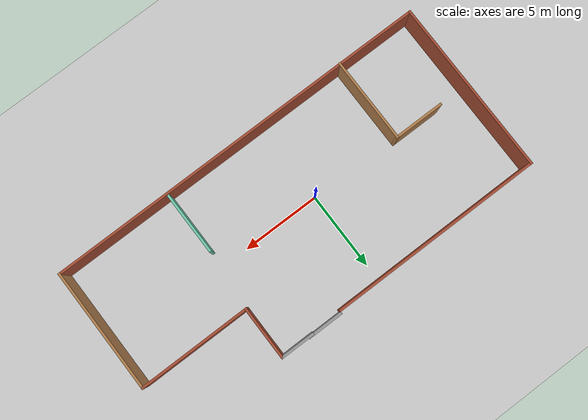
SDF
<sdf version="1.7">
 <world name="default">
  <light name="sun" type="directional">
   <pose>0 0 10 0 -0 0</pose>
   <diffuse>0.8 0.8 0.8 1</diffuse>
   <specular>0.2 0.2 0.2 1</specular>
   <attenuation>
    <range>1000</range>
    <constant>0.9</constant>
    <linear>0.01</linear>
    <quadratic>0.001</quadratic>
   </attenuation>
   <direction>-0.5 0.1 -0.9</direction>
   <spot><inner_angle>0</inner_angle><outer_angle>0</outer_angle><falloff>0</falloff></spot>
  </light>
  <model name="ground_plane">
   <static>1</static>
   <link name="link">
    <collision name="collision">
     <geometry><plane><normal>0 0 1</normal><size>100 100</size></plane></geometry>
     <surface>
      <contact><collide_bitmask>65535</collide_bitmask></contact>
      <friction><ode><mu>100</mu><mu2>50</mu2></ode></friction>
     </surface>
    </collision>
    <visual name="visual">
     <cast_shadows>0</cast_shadows>
     <geometry><plane><normal>0 0 1</normal><size>100 100</size></plane></geometry>
     <material>
      <script><uri>file://media/materials/scripts/gazebo.material</uri><name>Gazebo/Grey</name></script>
     </material>
    </visual>
   </link>
  </model>
  <gravity>0 0 -9.8</gravity>
  <magnetic_field>6e-06 2.3e-05 -4.2e-05</magnetic_field>
  <atmosphere type="adiabatic"/>
  <physics type="ode">
   <max_step_size>0.001</max_step_size>
   <real_time_factor>1</real_time_factor>
   <real_time_update_rate>1000</real_time_update_rate>
  </physics>
  <scene><ambient>0.4 0.4 0.4 1</ambient><background>0.7 0.7 0.7 1</background><shadows>1</shadows></scene>
  <spherical_coordinates>
   <surface_model>EARTH_WGS84</surface_model>
   <latitude_deg>0</latitude_deg>
   <longitude_deg>0</longitude_deg>
   <elevation>0</elevation>
   <heading_deg>0</heading_deg>
  </spherical_coordinates>
  <model name="rmp025">
   <pose>1.70334 0.548408 0 0 -0 0</pose>
   <link name="Door_0">
    <collision name="Door_0_Collision">
     <geometry><box><size>2.3 0.17 2</size></box></geometry>
     <pose>0 0 1 0 -0 0</pose>
    </collision>
    <visual name="Door_0_Visual">
     <pose>0 0 1 0 -0 0</pose>
     <geometry><box><size>2.3 0.17 2</size></box></geometry>
     <material>
      <script><uri>file://media/materials/scripts/gazebo.material</uri><name>Gazebo/Grey</name></script>
     </material>
    </visual>
    <pose>2.35858 5.66772 0 0 -0 0</pose>
   </link>
   <link name="Wall_10">
    <collision name="Wall_10_Collision">
     <geometry><box><size>3.5 0.15 2.5</size></box></geometry>
     <pose>0 0 1.25 0 -0 0</pose>
    </collision>
    <visual name="Wall_10_Visual">
     <pose>0 0 1.25 0 -0 0</pose>
     <geometry><box><size>3.5 0.15 2.5</size></box></geometry>
     <material>
      <script><uri>file://media/materials/scripts/gazebo.material</uri><name>Gazebo/Bricks</name></script>
      <ambient>1 1 1 1</ambient>
     </material>
     <meta><layer>0</layer></meta>
    </visual>
    <pose>5.325 3.93718 0 0 -0 1.5708</pose>
   </link>
   <link name="Wall_11">
    <collision name="Wall_11_Collision">
     <geometry><box><size>2.25 0.15 2.5</size></box></geometry>
     <pose>0 0 1.25 0 -0 0</pose>
    </collision>
    <visual name="Wall_11_Visual">
     <pose>0 0 1.25 0 -0 0</pose>
     <geometry><box><size>2.25 0.15 2.5</size></box></geometry>
     <material>
      <script><uri>file://media/materials/scripts/gazebo.material</uri><name>Gazebo/Grey</name></script>
      <ambient>1 1 1 1</ambient>
     </material>
     <meta><layer>0</layer></meta>
    </visual>
    <pose>4.275 5.61218 0 0 -0 3.14159</pose>
   </link>
   <link name="Wall_13">
    <collision name="Wall_13_Collision">
     <geometry><box><size>4 0.15 2.5</size></box></geometry>
     <pose>0 0 1.25 0 -0 0</pose>
    </collision>
    <visual name="Wall_13_Visual">
     <pose>0 0 1.25 0 -0 0</pose>
     <geometry><box><size>4 0.15 2.5</size></box></geometry>
     <material>
      <script><uri>file://media/materials/scripts/gazebo.material</uri><name>Gazebo/Grey</name></script>
      <ambient>0.435294 0.796078 0.67451 1</ambient>
     </material>
     <meta><layer>0</layer></meta>
    </visual>
    <pose>4.97757 -3.48728 0 0 -0 1.5708</pose>
   </link>
   <link name="Wall_15">
    <collision name="Wall_15_Collision">
     <geometry><box><size>5.5 0.15 2.5</size></box></geometry>
     <pose>0 0 1.25 0 -0 0</pose>
    </collision>
    <visual name="Wall_15_Visual">
     <pose>0 0 1.25 0 -0 0</pose>
     <geometry><box><size>5.5 0.15 2.5</size></box></geometry>
     <material>
      <script><uri>file://media/materials/scripts/gazebo.material</uri><name>Gazebo/Wood</name></script>
      <ambient>1 1 1 1</ambient>
     </material>
     <meta><layer>0</layer></meta>
    </visual>
    <pose>-7.34218 -2.93718 0 0 -0 1.5708</pose>
   </link>
   <link name="Wall_16">
    <collision name="Wall_16_Collision">
     <geometry><box><size>3.25 0.15 2.5</size></box></geometry>
     <pose>0 0 1.25 0 -0 0</pose>
    </collision>
    <visual name="Wall_16_Visual">
     <pose>0 0 1.25 0 -0 0</pose>
     <geometry><box><size>3.25 0.15 2.5</size></box></geometry>
     <material>
      <script><uri>file://media/materials/scripts/gazebo.material</uri><name>Gazebo/Wood</name></script>
      <ambient>1 1 1 1</ambient>
     </material>
     <meta><layer>0</layer></meta>
    </visual>
    <pose>-8.89218 -0.26218 0 0 -0 3.14159</pose>
   </link>
   <link name="Wall_5">
    <collision name="Wall_5_Collision">
     <geometry><box><size>13.75 0.15 2.5</size></box></geometry>
     <pose>0 0 1.25 0 -0 0</pose>
    </collision>
    <visual name="Wall_5_Visual">
     <pose>0 0 1.25 0 -0 0</pose>
     <geometry><box><size>13.75 0.15 2.5</size></box></geometry>
     <material>
      <script><uri>file://media/materials/scripts/gazebo.material</uri><name>Gazebo/Bricks</name></script>
      <ambient>1 1 1 1</ambient>
     </material>
     <meta><layer>0</layer></meta>
    </visual>
    <pose>-5.625 5.51218 0 0 -0 3.14159</pose>
   </link>
   <link name="Wall_6">
    <collision name="Wall_6_Collision">
     <geometry><box><size>11.25 0.15 2.5</size></box></geometry>
     <pose>0 0 1.25 0 -0 0</pose>
    </collision>
    <visual name="Wall_6_Visual">
     <pose>0 0 1.25 0 -0 0</pose>
     <geometry><box><size>11.25 0.15 2.5</size></box></geometry>
     <material>
      <script><uri>file://media/materials/scripts/gazebo.material</uri><name>Gazebo/Bricks</name></script>
      <ambient>1 1 1 1</ambient>
     </material>
     <meta><layer>0</layer></meta>
    </visual>
    <pose>-12.425 -0.03782 0 0 -0 -1.5708</pose>
   </link>
   <link name="Wall_7">
    <collision name="Wall_7_Collision">
     <geometry><box><size>25 0.15 2.5</size></box></geometry>
     <pose>0 0 1.25 0 -0 0</pose>
    </collision>
    <visual name="Wall_7_Visual">
     <pose>0 0 1.25 0 -0 0</pose>
     <geometry><box><size>25 0.15 2.5</size></box></geometry>
     <material>
      <script><uri>file://media/materials/scripts/gazebo.material</uri><name>Gazebo/Bricks</name></script>
      <ambient>1 1 1 1</ambient>
     </material>
     <meta><layer>0</layer></meta>
    </visual>
    <pose>0 -5.58782 0 0 -0 0</pose>
   </link>
   <link name="Wall_8">
    <collision name="Wall_8_Collision">
     <geometry><box><size>8 0.15 2.5</size></box></geometry>
     <pose>0 0 1.25 0 -0 0</pose>
    </collision>
    <visual name="Wall_8_Visual">
     <pose>0 0 1.25 0 -0 0</pose>
     <geometry><box><size>8 0.15 2.5</size></box></geometry>
     <material>
      <script><uri>file://media/materials/scripts/gazebo.material</uri><name>Gazebo/Wood</name></script>
      <ambient>1 1 1 1</ambient>
     </material>
     <meta><layer>0</layer></meta>
    </visual>
    <pose>12.425 -1.66282 0 0 -0 1.5708</pose>
   </link>
   <link name="Wall_9">
    <collision name="Wall_9_Collision">
     <geometry><box><size>7.25 0.15 2.5</size></box></geometry>
     <pose>0 0 1.25 0 -0 0</pose>
    </collision>
    <visual name="Wall_9_Visual">
     <pose>0 0 1.25 0 -0 0</pose>
     <geometry><box><size>7.25 0.15 2.5</size></box></geometry>
     <material>
      <script><uri>file://media/materials/scripts/gazebo.material</uri><name>Gazebo/Bricks</name></script>
      <ambient>1 1 1 1</ambient>
     </material>
     <meta><layer>0</layer></meta>
    </visual>
    <pose>8.875 2.26218 0 0 -0 3.14159</pose>
   </link>
   <static>1</static>
  </model>
 </world>
</sdf>
